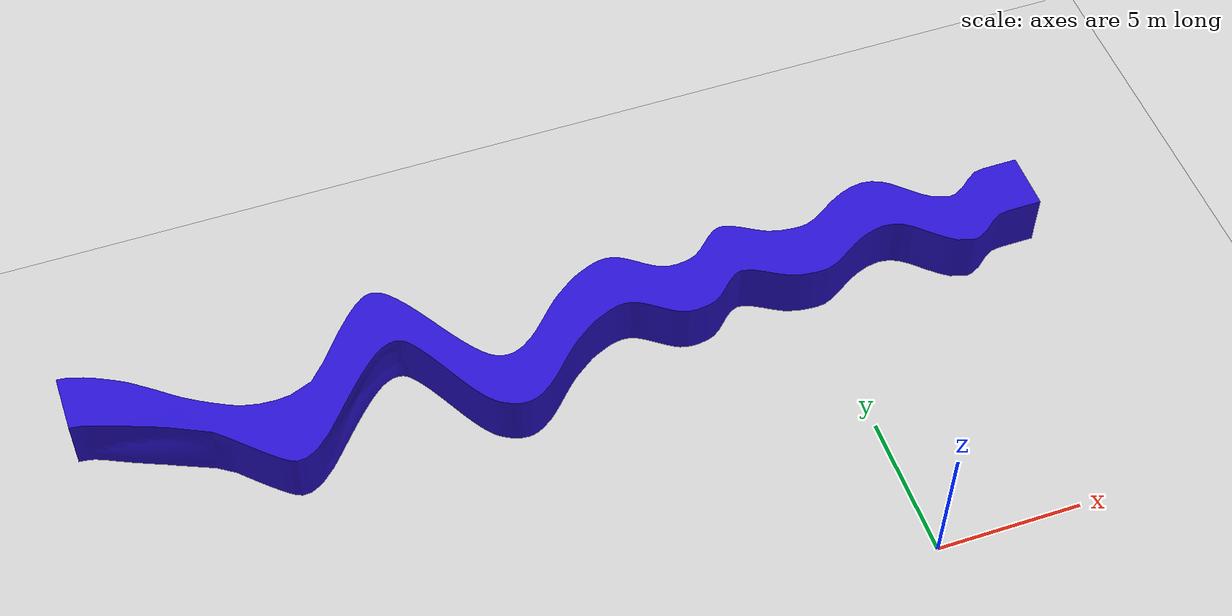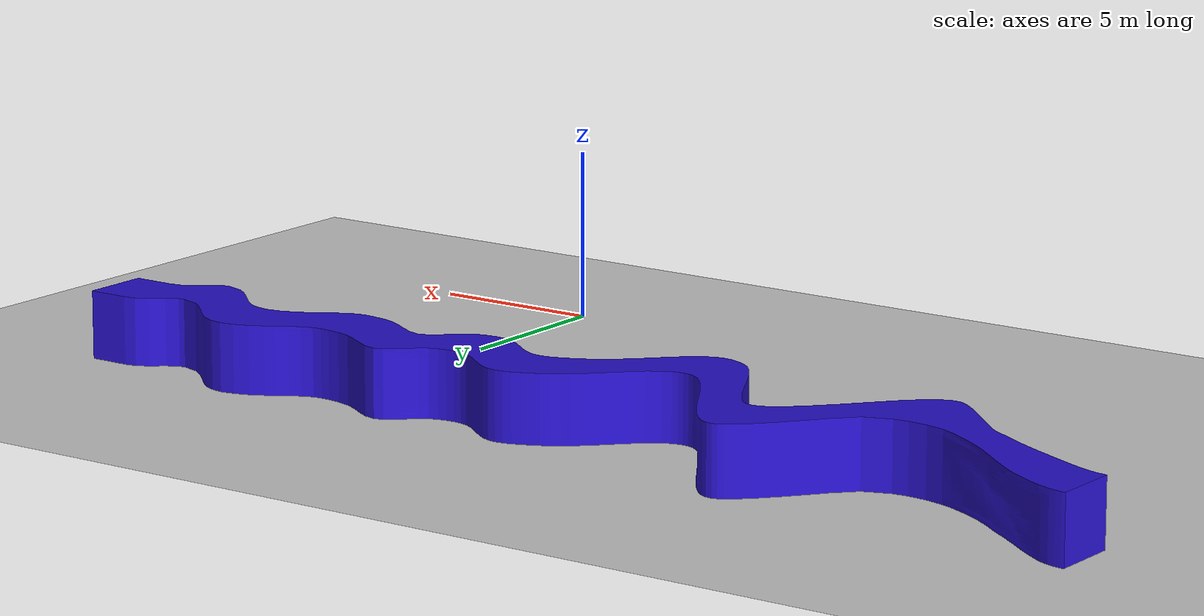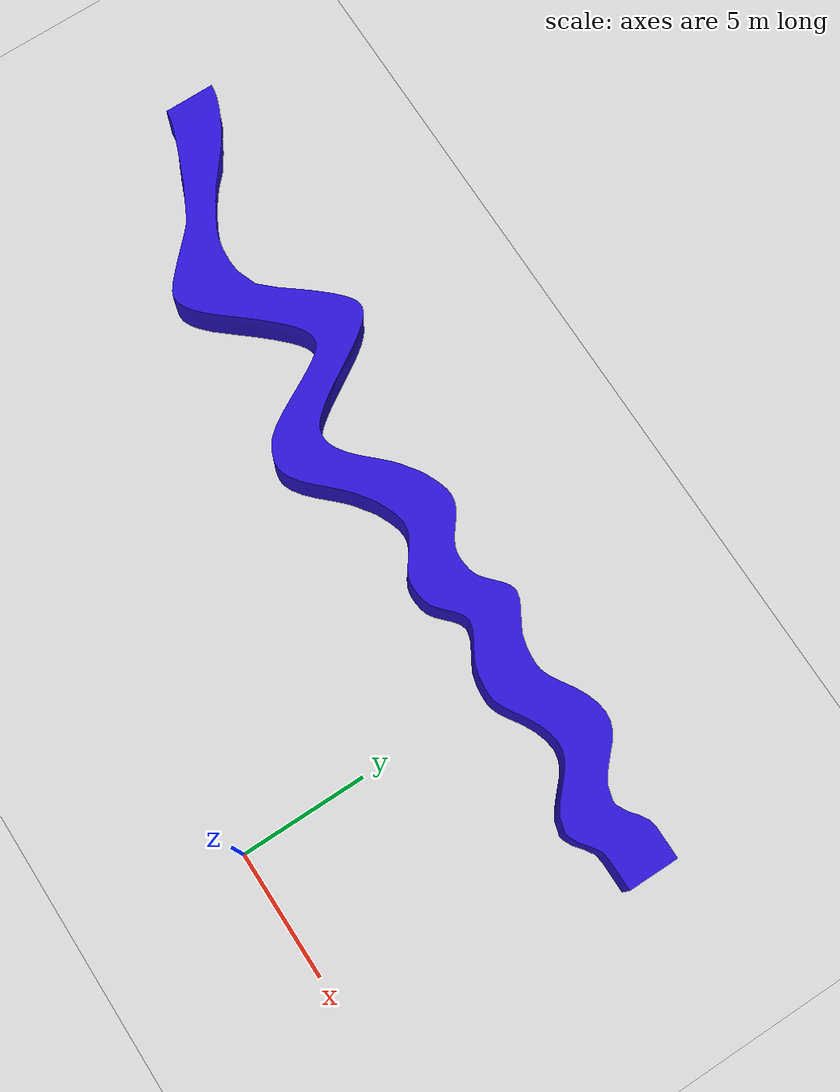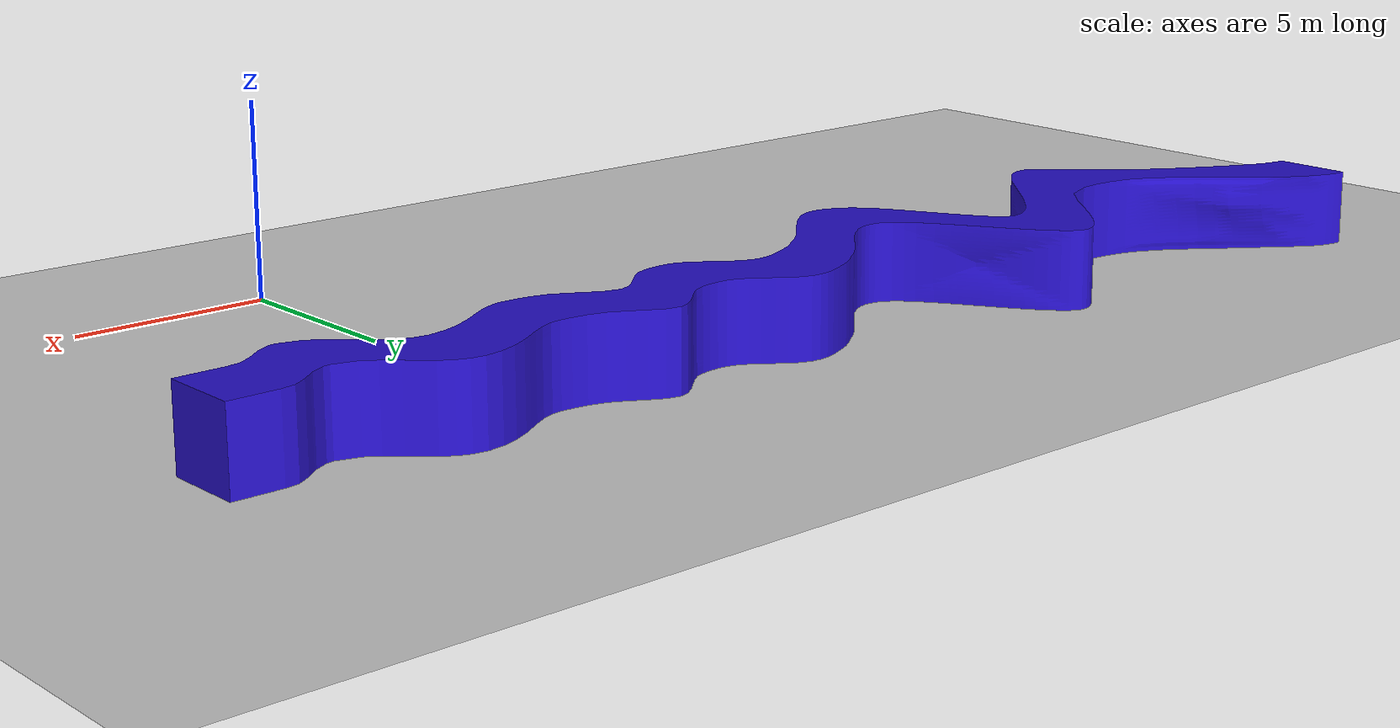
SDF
<?xml version="1.0"?>
<sdf version="1.4">
  <world name="default">
    <include>
      <uri>model://ground_plane</uri>
    </include>>
    <include>
      <uri>model://sun</uri>
    </include>
    <model name="blender_wall">
      <pose>0 0 0  0 0 0</pose>
      <static>true</static>
      <link name="body">
        <collision name="collision">
          <geometry>
            <mesh><uri>model://walls/blender_one_wall.stl</uri></mesh>
          </geometry>
              </collision>
        <visual name="visual">
          <geometry>
            <mesh>
              <uri>model://walls/blender_one_wall.dae</uri>
                <scale>1.0 1.0 1.0</scale>
            </mesh>
            </geometry>
        </visual>
        <inertial>
          <mass>1</mass>
          <inertia>
            <ixx>0.145833</ixx>
            <ixy>0</ixy>
            <ixz>0</ixz>
            <iyy>0.145833</iyy>
            <iyz>0</iyz>
            <izz>0.125</izz>
          </inertia>
        </inertial>
      </link>
    </model>

  </world>
</sdf>
